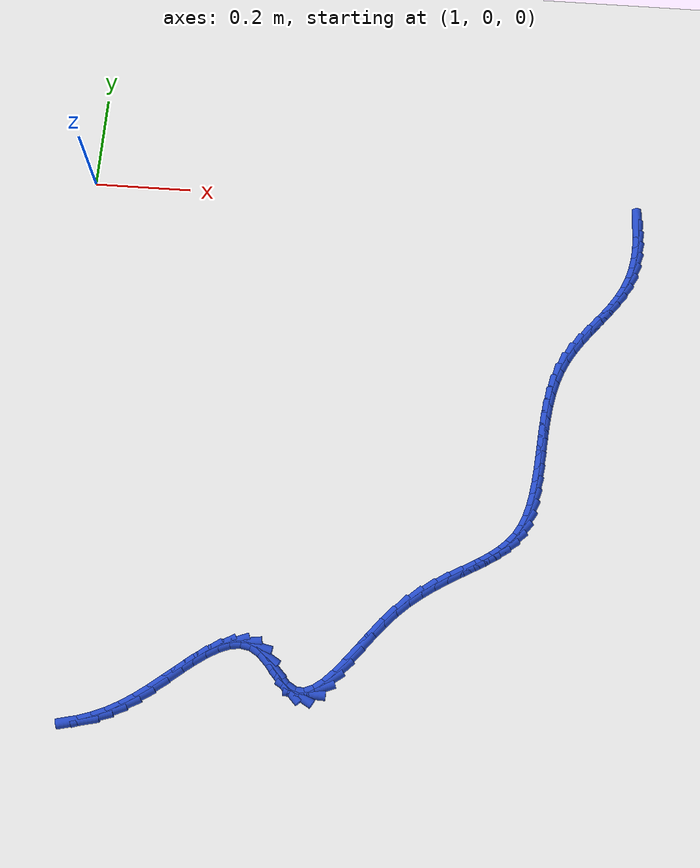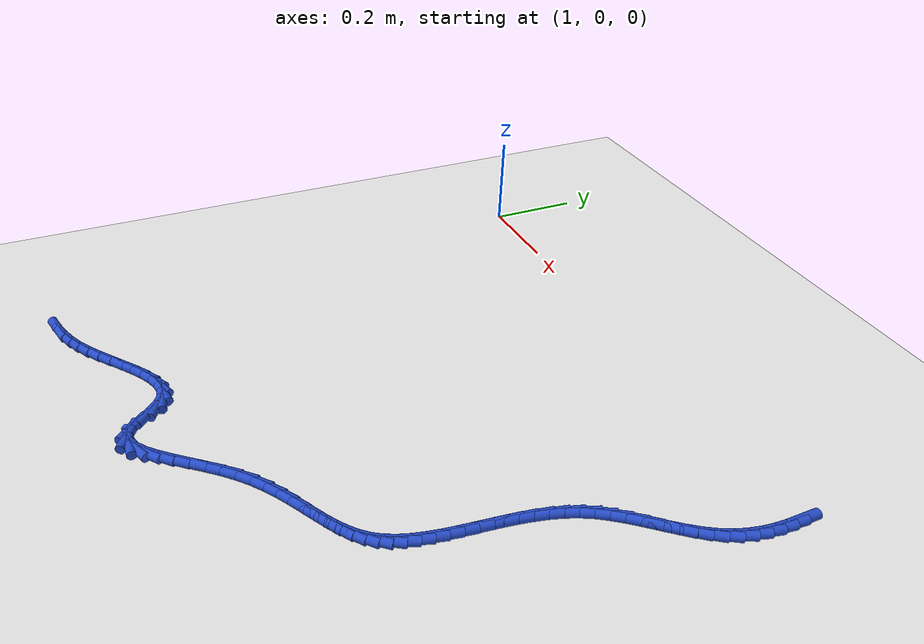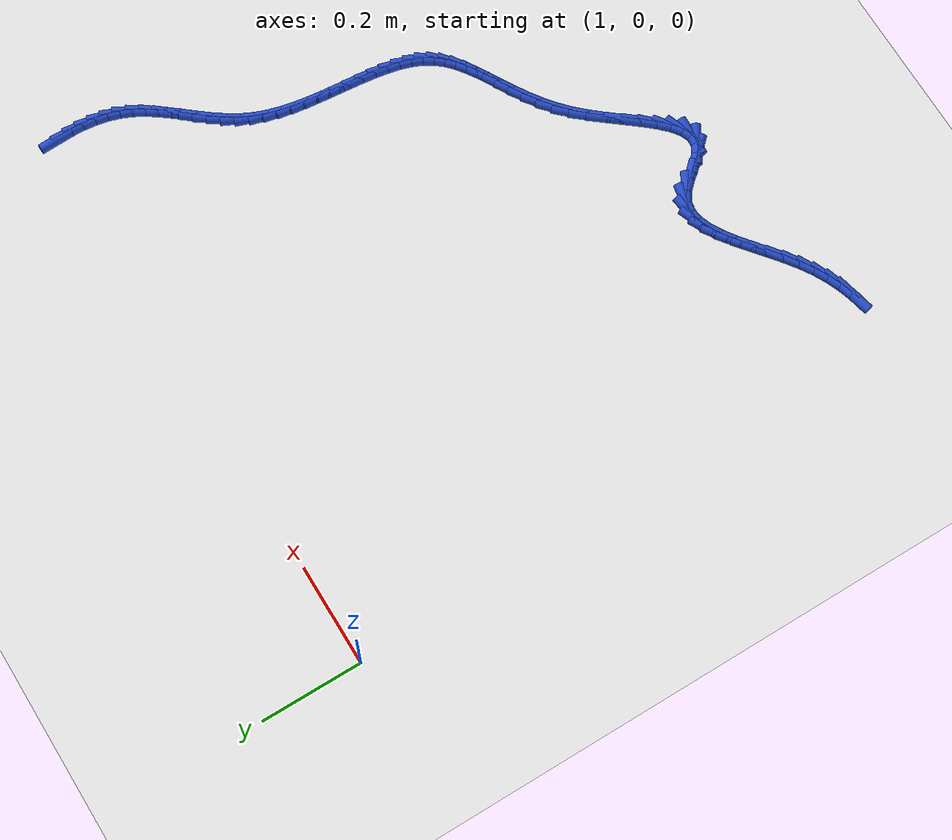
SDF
<sdf version="1.6">
 <world name="default">
  <model name="ground_plane">
   <static>1</static>
   <link name="link">
    <collision name="collision">
     <geometry><plane><normal>0 0 1</normal><size>100 100</size></plane></geometry>
     <surface><friction><ode><mu>100</mu><mu2>50</mu2></ode></friction></surface>
    </collision>
    <visual name="visual">
     <cast_shadows>0</cast_shadows>
     <geometry><plane><normal>0 0 1</normal><size>100 100</size></plane></geometry>
     <material>
      <script><uri>file://media/materials/scripts/gazebo.material</uri><name>Gazebo/WhiteGlow</name></script>
     </material>
    </visual>
   </link>
  </model>
  <model name="line">
   <link name="link_135">
    <pose>2.145547488506388 -0.024037321361176353 0.01 0 1.57 -1.529003160963976</pose>
    <collision name="collision">
     <geometry><cylinder><radius>0.01</radius><length>0.08</length></cylinder></geometry>
    </collision>
    <visual name="visual">
     <material>
      <script><name>Gazebo/Blue</name><uri>file://media/materials/scripts/gazebo.material</uri></script>
     </material>
     <geometry><cylinder><radius>0.01</radius><length>0.08</length></cylinder></geometry>
    </visual>
   </link>
   <link name="link_136">
    <pose>2.146621885973332 -0.049729843904766875 0.01 0 1.57 1.5419618150659322</pose>
    <collision name="collision">
     <geometry><cylinder><radius>0.01</radius><length>0.08</length></cylinder></geometry>
    </collision>
    <visual name="visual">
     <material>
      <script><name>Gazebo/Blue</name><uri>file://media/materials/scripts/gazebo.material</uri></script>
     </material>
     <geometry><cylinder><radius>0.01</radius><length>0.08</length></cylinder></geometry>
    </visual>
   </link>
   <link name="link_137">
    <pose>2.145894615922134 -0.074945061316441 0.01 0 1.57 1.4616460834846245</pose>
    <collision name="collision">
     <geometry><cylinder><radius>0.01</radius><length>0.08</length></cylinder></geometry>
    </collision>
    <visual name="visual">
     <material>
      <script><name>Gazebo/Blue</name><uri>file://media/materials/scripts/gazebo.material</uri></script>
     </material>
     <geometry><cylinder><radius>0.01</radius><length>0.08</length></cylinder></geometry>
    </visual>
   </link>
   <link name="link_138">
    <pose>2.1431960013786315 -0.0995706511855536 0.01 0 1.57 1.3711948818166788</pose>
    <collision name="collision">
     <geometry><cylinder><radius>0.01</radius><length>0.08</length></cylinder></geometry>
    </collision>
    <visual name="visual">
     <material>
      <script><name>Gazebo/Blue</name><uri>file://media/materials/scripts/gazebo.material</uri></script>
     </material>
     <geometry><cylinder><radius>0.01</radius><length>0.08</length></cylinder></geometry>
    </visual>
   </link>
   <link name="link_139">
    <pose>2.138356365368665 -0.12349429110145652 0.01 0 1.57 1.2707264501923532</pose>
    <collision name="collision">
     <geometry><cylinder><radius>0.01</radius><length>0.08</length></cylinder></geometry>
    </collision>
    <visual name="visual">
     <material>
      <script><name>Gazebo/Blue</name><uri>file://media/materials/scripts/gazebo.material</uri></script>
     </material>
     <geometry><cylinder><radius>0.01</radius><length>0.08</length></cylinder></geometry>
    </visual>
   </link>
   <link name="link_140">
    <pose>2.1312060309180727 -0.14660365865350378 0.01 0 1.57 1.1612245444314975</pose>
    <collision name="collision">
     <geometry><cylinder><radius>0.01</radius><length>0.08</length></cylinder></geometry>
    </collision>
    <visual name="visual">
     <material>
      <script><name>Gazebo/Blue</name><uri>file://media/materials/scripts/gazebo.material</uri></script>
     </material>
     <geometry><cylinder><radius>0.01</radius><length>0.08</length></cylinder></geometry>
    </visual>
   </link>
   <link name="link_141">
    <pose>2.1215758735260795 -0.16878671592267652 0.01 0 1.57 1.053721000031761</pose>
    <collision name="collision">
     <geometry><cylinder><radius>0.01</radius><length>0.08</length></cylinder></geometry>
    </collision>
    <visual name="visual">
     <material>
      <script><name>Gazebo/Blue</name><uri>file://media/materials/scripts/gazebo.material</uri></script>
     </material>
     <geometry><cylinder><radius>0.01</radius><length>0.08</length></cylinder></geometry>
    </visual>
   </link>
   <link name="link_142">
    <pose>2.109493567356923 -0.1900327648442142 0.01 0 1.57 0.9720666196559449</pose>
    <collision name="collision">
     <geometry><cylinder><radius>0.01</radius><length>0.08</length></cylinder></geometry>
    </collision>
    <visual name="visual">
     <material>
      <script><name>Gazebo/Blue</name><uri>file://media/materials/scripts/gazebo.material</uri></script>
     </material>
     <geometry><cylinder><radius>0.01</radius><length>0.08</length></cylinder></geometry>
    </visual>
   </link>
   <link name="link_143">
    <pose>2.0954735347144755 -0.210581754305303 0.01 0 1.57 0.9187056327368542</pose>
    <collision name="collision">
     <geometry><cylinder><radius>0.01</radius><length>0.08</length></cylinder></geometry>
    </collision>
    <visual name="visual">
     <material>
      <script><name>Gazebo/Blue</name><uri>file://media/materials/scripts/gazebo.material</uri></script>
     </material>
     <geometry><cylinder><radius>0.01</radius><length>0.08</length></cylinder></geometry>
    </visual>
   </link>
   <link name="link_144">
    <pose>2.080104141045406 -0.2307117096064709 0.01 0 1.57 0.8918225638291003</pose>
    <collision name="collision">
     <geometry><cylinder><radius>0.01</radius><length>0.08</length></cylinder></geometry>
    </collision>
    <visual name="visual">
     <material>
      <script><name>Gazebo/Blue</name><uri>file://media/materials/scripts/gazebo.material</uri></script>
     </material>
     <geometry><cylinder><radius>0.01</radius><length>0.08</length></cylinder></geometry>
    </visual>
   </link>
   <link name="link_145">
    <pose>2.0639737517963836 -0.25070065604824854 0.01 0 1.57 0.8899578127506844</pose>
    <collision name="collision">
     <geometry><cylinder><radius>0.01</radius><length>0.08</length></cylinder></geometry>
    </collision>
    <visual name="visual">
     <material>
      <script><name>Gazebo/Blue</name><uri>file://media/materials/scripts/gazebo.material</uri></script>
     </material>
     <geometry><cylinder><radius>0.01</radius><length>0.08</length></cylinder></geometry>
    </visual>
   </link>
   <link name="link_146">
    <pose>2.047670732414079 -0.270826618931164 0.01 0 1.57 0.9124601077979719</pose>
    <collision name="collision">
     <geometry><cylinder><radius>0.01</radius><length>0.08</length></cylinder></geometry>
    </collision>
    <visual name="visual">
     <material>
      <script><name>Gazebo/Blue</name><uri>file://media/materials/scripts/gazebo.material</uri></script>
     </material>
     <geometry><cylinder><radius>0.01</radius><length>0.08</length></cylinder></geometry>
    </visual>
   </link>
   <link name="link_147">
    <pose>2.03178344834516 -0.2913676235557478 0.01 0 1.57 0.9594595650948304</pose>
    <collision name="collision">
     <geometry><cylinder><radius>0.01</radius><length>0.08</length></cylinder></geometry>
    </collision>
    <visual name="visual">
     <material>
      <script><name>Gazebo/Blue</name><uri>file://media/materials/scripts/gazebo.material</uri></script>
     </material>
     <geometry><cylinder><radius>0.01</radius><length>0.08</length></cylinder></geometry>
    </visual>
   </link>
   <link name="link_148">
    <pose>2.0169002650362975 -0.3126016952225281 0.01 0 1.57 1.0314497796876039</pose>
    <collision name="collision">
     <geometry><cylinder><radius>0.01</radius><length>0.08</length></cylinder></geometry>
    </collision>
    <visual name="visual">
     <material>
      <script><name>Gazebo/Blue</name><uri>file://media/materials/scripts/gazebo.material</uri></script>
     </material>
     <geometry><cylinder><radius>0.01</radius><length>0.08</length></cylinder></geometry>
    </visual>
   </link>
   <link name="link_149">
    <pose>2.003609547934159 -0.3348068592320354 0.01 0 1.57 1.1277035733196303</pose>
    <collision name="collision">
     <geometry><cylinder><radius>0.01</radius><length>0.08</length></cylinder></geometry>
    </collision>
    <visual name="visual">
     <material>
      <script><name>Gazebo/Blue</name><uri>file://media/materials/scripts/gazebo.material</uri></script>
     </material>
     <geometry><cylinder><radius>0.01</radius><length>0.08</length></cylinder></geometry>
    </visual>
   </link>
   <link name="link_150">
    <pose>1.9924833271727724 -0.35825198910559775 0.01 0 1.57 1.2277944642108363</pose>
    <collision name="collision">
     <geometry><cylinder><radius>0.01</radius><length>0.08</length></cylinder></geometry>
    </collision>
    <visual name="visual">
     <material>
      <script><name>Gazebo/Blue</name><uri>file://media/materials/scripts/gazebo.material</uri></script>
     </material>
     <geometry><cylinder><radius>0.01</radius><length>0.08</length></cylinder></geometry>
    </visual>
   </link>
   <link name="link_151">
    <pose>1.9836588125578714 -0.3829623523973328 0.01 0 1.57 1.3104567574101407</pose>
    <collision name="collision">
     <geometry><cylinder><radius>0.01</radius><length>0.08</length></cylinder></geometry>
    </collision>
    <visual name="visual">
     <material>
      <script><name>Gazebo/Blue</name><uri>file://media/materials/scripts/gazebo.material</uri></script>
     </material>
     <geometry><cylinder><radius>0.01</radius><length>0.08</length></cylinder></geometry>
    </visual>
   </link>
   <link name="link_152">
    <pose>1.9768027763607372 -0.408699656328189 0.01 0 1.57 1.3755161002725353</pose>
    <collision name="collision">
     <geometry><cylinder><radius>0.01</radius><length>0.08</length></cylinder></geometry>
    </collision>
    <visual name="visual">
     <material>
      <script><name>Gazebo/Blue</name><uri>file://media/materials/scripts/gazebo.material</uri></script>
     </material>
     <geometry><cylinder><radius>0.01</radius><length>0.08</length></cylinder></geometry>
    </visual>
   </link>
   <link name="link_153">
    <pose>1.9715585182544 -0.4352124577104765 0.01 0 1.57 1.4243072229793712</pose>
    <collision name="collision">
     <geometry><cylinder><radius>0.01</radius><length>0.08</length></cylinder></geometry>
    </collision>
    <visual name="visual">
     <material>
      <script><name>Gazebo/Blue</name><uri>file://media/materials/scripts/gazebo.material</uri></script>
     </material>
     <geometry><cylinder><radius>0.01</radius><length>0.08</length></cylinder></geometry>
    </visual>
   </link>
   <link name="link_154">
    <pose>1.9675693379118895 -0.4622493133565088 0.01 0 1.57 1.4580988979780563</pose>
    <collision name="collision">
     <geometry><cylinder><radius>0.01</radius><length>0.08</length></cylinder></geometry>
    </collision>
    <visual name="visual">
     <material>
      <script><name>Gazebo/Blue</name><uri>file://media/materials/scripts/gazebo.material</uri></script>
     </material>
     <geometry><cylinder><radius>0.01</radius><length>0.08</length></cylinder></geometry>
    </visual>
   </link>
   <link name="link_155">
    <pose>1.9644785350062355 -0.48955878007859605 0.01 0 1.57 1.4777954753109928</pose>
    <collision name="collision">
     <geometry><cylinder><radius>0.01</radius><length>0.08</length></cylinder></geometry>
    </collision>
    <visual name="visual">
     <material>
      <script><name>Gazebo/Blue</name><uri>file://media/materials/scripts/gazebo.material</uri></script>
     </material>
     <geometry><cylinder><radius>0.01</radius><length>0.08</length></cylinder></geometry>
    </visual>
   </link>
   <link name="link_156">
    <pose>1.9619294092104673 -0.5168894146890516 0.01 0 1.57 1.483779805797403</pose>
    <collision name="collision">
     <geometry><cylinder><radius>0.01</radius><length>0.08</length></cylinder></geometry>
    </collision>
    <visual name="visual">
     <material>
      <script><name>Gazebo/Blue</name><uri>file://media/materials/scripts/gazebo.material</uri></script>
     </material>
     <geometry><cylinder><radius>0.01</radius><length>0.08</length></cylinder></geometry>
    </visual>
   </link>
   <link name="link_157">
    <pose>1.9595652601976137 -0.5439897740001852 0.01 0 1.57 1.4758161802937195</pose>
    <collision name="collision">
     <geometry><cylinder><radius>0.01</radius><length>0.08</length></cylinder></geometry>
    </collision>
    <visual name="visual">
     <material>
      <script><name>Gazebo/Blue</name><uri>file://media/materials/scripts/gazebo.material</uri></script>
     </material>
     <geometry><cylinder><radius>0.01</radius><length>0.08</length></cylinder></geometry>
    </visual>
   </link>
   <link name="link_158">
    <pose>1.9570293876407046 -0.5706084148243108 0.01 0 1.57 1.452965721846108</pose>
    <collision name="collision">
     <geometry><cylinder><radius>0.01</radius><length>0.08</length></cylinder></geometry>
    </collision>
    <visual name="visual">
     <material>
      <script><name>Gazebo/Blue</name><uri>file://media/materials/scripts/gazebo.material</uri></script>
     </material>
     <geometry><cylinder><radius>0.01</radius><length>0.08</length></cylinder></geometry>
    </visual>
   </link>
   <link name="link_159">
    <pose>1.9539650912127702 -0.5964938939737381 0.01 0 1.57 1.4135008552947723</pose>
    <collision name="collision">
     <geometry><cylinder><radius>0.01</radius><length>0.08</length></cylinder></geometry>
    </collision>
    <visual name="visual">
     <material>
      <script><name>Gazebo/Blue</name><uri>file://media/materials/scripts/gazebo.material</uri></script>
     </material>
     <geometry><cylinder><radius>0.01</radius><length>0.08</length></cylinder></geometry>
    </visual>
   </link>
   <link name="link_160">
    <pose>1.9500156705868394 -0.6213947682607802 0.01 0 1.57 1.3548513622401577</pose>
    <collision name="collision">
     <geometry><cylinder><radius>0.01</radius><length>0.08</length></cylinder></geometry>
    </collision>
    <visual name="visual">
     <material>
      <script><name>Gazebo/Blue</name><uri>file://media/materials/scripts/gazebo.material</uri></script>
     </material>
     <geometry><cylinder><radius>0.01</radius><length>0.08</length></cylinder></geometry>
    </visual>
   </link>
   <link name="link_161">
    <pose>1.944824425435942 -0.6450595944977491 0.01 0 1.57 1.2736995490524854</pose>
    <collision name="collision">
     <geometry><cylinder><radius>0.01</radius><length>0.08</length></cylinder></geometry>
    </collision>
    <visual name="visual">
     <material>
      <script><name>Gazebo/Blue</name><uri>file://media/materials/scripts/gazebo.material</uri></script>
     </material>
     <geometry><cylinder><radius>0.01</radius><length>0.08</length></cylinder></geometry>
    </visual>
   </link>
   <link name="link_162">
    <pose>1.9380346554331083 -0.6672369294969553 0.01 0 1.57 1.1664965853637423</pose>
    <collision name="collision">
     <geometry><cylinder><radius>0.01</radius><length>0.08</length></cylinder></geometry>
    </collision>
    <visual name="visual">
     <material>
      <script><name>Gazebo/Blue</name><uri>file://media/materials/scripts/gazebo.material</uri></script>
     </material>
     <geometry><cylinder><radius>0.01</radius><length>0.08</length></cylinder></geometry>
    </visual>
   </link>
   <link name="link_163">
    <pose>1.9292896602513658 -0.6876753300707117 0.01 0 1.57 1.0308545725801195</pose>
    <collision name="collision">
     <geometry><cylinder><radius>0.01</radius><length>0.08</length></cylinder></geometry>
    </collision>
    <visual name="visual">
     <material>
      <script><name>Gazebo/Blue</name><uri>file://media/materials/scripts/gazebo.material</uri></script>
     </material>
     <geometry><cylinder><radius>0.01</radius><length>0.08</length></cylinder></geometry>
    </visual>
   </link>
   <link name="link_164">
    <pose>1.9182327936556103 -0.7061234126040086 0.01 0 1.57 0.877732630157259</pose>
    <collision name="collision">
     <geometry><cylinder><radius>0.01</radius><length>0.08</length></cylinder></geometry>
    </collision>
    <visual name="visual">
     <material>
      <script><name>Gazebo/Blue</name><uri>file://media/materials/scripts/gazebo.material</uri></script>
     </material>
     <geometry><cylinder><radius>0.01</radius><length>0.08</length></cylinder></geometry>
    </visual>
   </link>
   <link name="link_165">
    <pose>1.904646332026282 -0.7224827923215713 0.01 0 1.57 0.7448929235461536</pose>
    <collision name="collision">
     <geometry><cylinder><radius>0.01</radius><length>0.08</length></cylinder></geometry>
    </collision>
    <visual name="visual">
     <material>
      <script><name>Gazebo/Blue</name><uri>file://media/materials/scripts/gazebo.material</uri></script>
     </material>
     <geometry><cylinder><radius>0.01</radius><length>0.08</length></cylinder></geometry>
    </visual>
   </link>
   <link name="link_166">
    <pose>1.8887519659687688 -0.7371390219720014 0.01 0 1.57 0.6439892334655472</pose>
    <collision name="collision">
     <geometry><cylinder><radius>0.01</radius><length>0.08</length></cylinder></geometry>
    </collision>
    <visual name="visual">
     <material>
      <script><name>Gazebo/Blue</name><uri>file://media/materials/scripts/gazebo.material</uri></script>
     </material>
     <geometry><cylinder><radius>0.01</radius><length>0.08</length></cylinder></geometry>
    </visual>
   </link>
   <link name="link_167">
    <pose>1.8708580565745776 -0.750573106608508 0.01 0 1.57 0.5750328750351091</pose>
    <collision name="collision">
     <geometry><cylinder><radius>0.01</radius><length>0.08</length></cylinder></geometry>
    </collision>
    <visual name="visual">
     <material>
      <script><name>Gazebo/Blue</name><uri>file://media/materials/scripts/gazebo.material</uri></script>
     </material>
     <geometry><cylinder><radius>0.01</radius><length>0.08</length></cylinder></geometry>
    </visual>
   </link>
   <link name="link_168">
    <pose>1.8512729649352206 -0.7632660512842987 0.01 0 1.57 0.5352155231823887</pose>
    <collision name="collision">
     <geometry><cylinder><radius>0.01</radius><length>0.08</length></cylinder></geometry>
    </collision>
    <visual name="visual">
     <material>
      <script><name>Gazebo/Blue</name><uri>file://media/materials/scripts/gazebo.material</uri></script>
     </material>
     <geometry><cylinder><radius>0.01</radius><length>0.08</length></cylinder></geometry>
    </visual>
   </link>
   <link name="link_169">
    <pose>1.830305052142206 -0.7756988610525832 0.01 0 1.57 0.5211287642328216</pose>
    <collision name="collision">
     <geometry><cylinder><radius>0.01</radius><length>0.08</length></cylinder></geometry>
    </collision>
    <visual name="visual">
     <material>
      <script><name>Gazebo/Blue</name><uri>file://media/materials/scripts/gazebo.material</uri></script>
     </material>
     <geometry><cylinder><radius>0.01</radius><length>0.08</length></cylinder></geometry>
    </visual>
   </link>
   <link name="link_170">
    <pose>1.8082626792870429 -0.7883525409665679 0.01 0 1.57 0.529728516114205</pose>
    <collision name="collision">
     <geometry><cylinder><radius>0.01</radius><length>0.08</length></cylinder></geometry>
    </collision>
    <visual name="visual">
     <material>
      <script><name>Gazebo/Blue</name><uri>file://media/materials/scripts/gazebo.material</uri></script>
     </material>
     <geometry><cylinder><radius>0.01</radius><length>0.08</length></cylinder></geometry>
    </visual>
   </link>
   <link name="link_171">
    <pose>1.785454207461242 -0.8017080960794627 0.01 0 1.57 0.558508265827945</pose>
    <collision name="collision">
     <geometry><cylinder><radius>0.01</radius><length>0.08</length></cylinder></geometry>
    </collision>
    <visual name="visual">
     <material>
      <script><name>Gazebo/Blue</name><uri>file://media/materials/scripts/gazebo.material</uri></script>
     </material>
     <geometry><cylinder><radius>0.01</radius><length>0.08</length></cylinder></geometry>
    </visual>
   </link>
   <link name="link_172">
    <pose>1.7621879977563115 -0.8162465314444761 0.01 0 1.57 0.6053000968202833</pose>
    <collision name="collision">
     <geometry><cylinder><radius>0.01</radius><length>0.08</length></cylinder></geometry>
    </collision>
    <visual name="visual">
     <material>
      <script><name>Gazebo/Blue</name><uri>file://media/materials/scripts/gazebo.material</uri></script>
     </material>
     <geometry><cylinder><radius>0.01</radius><length>0.08</length></cylinder></geometry>
    </visual>
   </link>
   <link name="link_173">
    <pose>1.7387724112637621 -0.8324488521148155 0.01 0 1.57 0.6679379629216302</pose>
    <collision name="collision">
     <geometry><cylinder><radius>0.01</radius><length>0.08</length></cylinder></geometry>
    </collision>
    <visual name="visual">
     <material>
      <script><name>Gazebo/Blue</name><uri>file://media/materials/scripts/gazebo.material</uri></script>
     </material>
     <geometry><cylinder><radius>0.01</radius><length>0.08</length></cylinder></geometry>
    </visual>
   </link>
   <link name="link_174">
    <pose>1.7155158090751024 -0.8507960631436902 0.01 0 1.57 0.743921683178703</pose>
    <collision name="collision">
     <geometry><cylinder><radius>0.01</radius><length>0.08</length></cylinder></geometry>
    </collision>
    <visual name="visual">
     <material>
      <script><name>Gazebo/Blue</name><uri>file://media/materials/scripts/gazebo.material</uri></script>
     </material>
     <geometry><cylinder><radius>0.01</radius><length>0.08</length></cylinder></geometry>
    </visual>
   </link>
   <link name="link_175">
    <pose>1.692726552281842 -0.8717691695843075 0.01 0 1.57 0.8239747014101352</pose>
    <collision name="collision">
     <geometry><cylinder><radius>0.01</radius><length>0.08</length></cylinder></geometry>
    </collision>
    <visual name="visual">
     <material>
      <script><name>Gazebo/Blue</name><uri>file://media/materials/scripts/gazebo.material</uri></script>
     </material>
     <geometry><cylinder><radius>0.01</radius><length>0.08</length></cylinder></geometry>
    </visual>
   </link>
   <link name="link_176">
    <pose>1.670665233217462 -0.8956017969624296 0.01 0 1.57 0.8779778802151064</pose>
    <collision name="collision">
     <geometry><cylinder><radius>0.01</radius><length>0.08</length></cylinder></geometry>
    </collision>
    <visual name="visual">
     <material>
      <script><name>Gazebo/Blue</name><uri>file://media/materials/scripts/gazebo.material</uri></script>
     </material>
     <geometry><cylinder><radius>0.01</radius><length>0.08</length></cylinder></geometry>
    </visual>
   </link>
   <link name="link_177">
    <pose>1.6493512733946938 -0.9212786221994915 0.01 0 1.57 0.9023176335084879</pose>
    <collision name="collision">
     <geometry><cylinder><radius>0.01</radius><length>0.08</length></cylinder></geometry>
    </collision>
    <visual name="visual">
     <material>
      <script><name>Gazebo/Blue</name><uri>file://media/materials/scripts/gazebo.material</uri></script>
     </material>
     <geometry><cylinder><radius>0.01</radius><length>0.08</length></cylinder></geometry>
    </visual>
   </link>
   <link name="link_178">
    <pose>1.6287281579353687 -0.9473910712874102 0.01 0 1.57 0.8990378030371501</pose>
    <collision name="collision">
     <geometry><cylinder><radius>0.01</radius><length>0.08</length></cylinder></geometry>
    </collision>
    <visual name="visual">
     <material>
      <script><name>Gazebo/Blue</name><uri>file://media/materials/scripts/gazebo.material</uri></script>
     </material>
     <geometry><cylinder><radius>0.01</radius><length>0.08</length></cylinder></geometry>
    </visual>
   </link>
   <link name="link_179">
    <pose>1.6087393438200936 -0.9725304244834498 0.01 0 1.57 0.8645917673765326</pose>
    <collision name="collision">
     <geometry><cylinder><radius>0.01</radius><length>0.08</length></cylinder></geometry>
    </collision>
    <visual name="visual">
     <material>
      <script><name>Gazebo/Blue</name><uri>file://media/materials/scripts/gazebo.material</uri></script>
     </material>
     <geometry><cylinder><radius>0.01</radius><length>0.08</length></cylinder></geometry>
    </visual>
   </link>
   <link name="link_180">
    <pose>1.5893282880294732 -0.9952879620448769 0.01 0 1.57 0.7874364102881622</pose>
    <collision name="collision">
     <geometry><cylinder><radius>0.01</radius><length>0.08</length></cylinder></geometry>
    </collision>
    <visual name="visual">
     <material>
      <script><name>Gazebo/Blue</name><uri>file://media/materials/scripts/gazebo.material</uri></script>
     </material>
     <geometry><cylinder><radius>0.01</radius><length>0.08</length></cylinder></geometry>
    </visual>
   </link>
   <link name="link_181">
    <pose>1.5704384475441133 -1.014254964228955 0.01 0 1.57 0.6417227682150131</pose>
    <collision name="collision">
     <geometry><cylinder><radius>0.01</radius><length>0.08</length></cylinder></geometry>
    </collision>
    <visual name="visual">
     <material>
      <script><name>Gazebo/Blue</name><uri>file://media/materials/scripts/gazebo.material</uri></script>
     </material>
     <geometry><cylinder><radius>0.01</radius><length>0.08</length></cylinder></geometry>
    </visual>
   </link>
   <link name="link_182">
    <pose>1.5520132793446195 -1.0280227112929496 0.01 0 1.57 0.3782534481332926</pose>
    <collision name="collision">
     <geometry><cylinder><radius>0.01</radius><length>0.08</length></cylinder></geometry>
    </collision>
    <visual name="visual">
     <material>
      <script><name>Gazebo/Blue</name><uri>file://media/materials/scripts/gazebo.material</uri></script>
     </material>
     <geometry><cylinder><radius>0.01</radius><length>0.08</length></cylinder></geometry>
    </visual>
   </link>
   <link name="link_183">
    <pose>1.5339962404115965 -1.0351824834941268 0.01 0 1.57 -0.04847038093511147</pose>
    <collision name="collision">
     <geometry><cylinder><radius>0.01</radius><length>0.08</length></cylinder></geometry>
    </collision>
    <visual name="visual">
     <material>
      <script><name>Gazebo/Blue</name><uri>file://media/materials/scripts/gazebo.material</uri></script>
     </material>
     <geometry><cylinder><radius>0.01</radius><length>0.08</length></cylinder></geometry>
    </visual>
   </link>
   <link name="link_184">
    <pose>1.5163307877256509 -1.0343255610897508 0.01 0 1.57 -0.5310359849798404</pose>
    <collision name="collision">
     <geometry><cylinder><radius>0.01</radius><length>0.08</length></cylinder></geometry>
    </collision>
    <visual name="visual">
     <material>
      <script><name>Gazebo/Blue</name><uri>file://media/materials/scripts/gazebo.material</uri></script>
     </material>
     <geometry><cylinder><radius>0.01</radius><length>0.08</length></cylinder></geometry>
    </visual>
   </link>
   <link name="link_185">
    <pose>1.4989565298222132 -1.0241214944430248 0.01 0 1.57 -0.8080297457779237</pose>
    <collision name="collision">
     <geometry><cylinder><radius>0.01</radius><length>0.08</length></cylinder></geometry>
    </collision>
    <visual name="visual">
     <material>
      <script><name>Gazebo/Blue</name><uri>file://media/materials/scripts/gazebo.material</uri></script>
     </material>
     <geometry><cylinder><radius>0.01</radius><length>0.08</length></cylinder></geometry>
    </visual>
   </link>
   <link name="link_186">
    <pose>1.4816753987996336 -1.0060399126059247 0.01 0 1.57 -0.8741062091459051</pose>
    <collision name="collision">
     <geometry><cylinder><radius>0.01</radius><length>0.08</length></cylinder></geometry>
    </collision>
    <visual name="visual">
     <material>
      <script><name>Gazebo/Blue</name><uri>file://media/materials/scripts/gazebo.material</uri></script>
     </material>
     <geometry><cylinder><radius>0.01</radius><length>0.08</length></cylinder></geometry>
    </visual>
   </link>
   <link name="link_187">
    <pose>1.4641170921760585 -0.9850533706772486 0.01 0 1.57 -0.7984340188741651</pose>
    <collision name="collision">
     <geometry><cylinder><radius>0.01</radius><length>0.08</length></cylinder></geometry>
    </collision>
    <visual name="visual">
     <material>
      <script><name>Gazebo/Blue</name><uri>file://media/materials/scripts/gazebo.material</uri></script>
     </material>
     <geometry><cylinder><radius>0.01</radius><length>0.08</length></cylinder></geometry>
    </visual>
   </link>
   <link name="link_188">
    <pose>1.4459004385482832 -0.966355477087041 0.01 0 1.57 -0.5455272994856106</pose>
    <collision name="collision">
     <geometry><cylinder><radius>0.01</radius><length>0.08</length></cylinder></geometry>
    </collision>
    <visual name="visual">
     <material>
      <script><name>Gazebo/Blue</name><uri>file://media/materials/scripts/gazebo.material</uri></script>
     </material>
     <geometry><cylinder><radius>0.01</radius><length>0.08</length></cylinder></geometry>
    </visual>
   </link>
   <link name="link_189">
    <pose>1.4266788037582694 -0.9546885594334528 0.01 0 1.57 -0.18429053837140177</pose>
    <collision name="collision">
     <geometry><cylinder><radius>0.01</radius><length>0.08</length></cylinder></geometry>
    </collision>
    <visual name="visual">
     <material>
      <script><name>Gazebo/Blue</name><uri>file://media/materials/scripts/gazebo.material</uri></script>
     </material>
     <geometry><cylinder><radius>0.01</radius><length>0.08</length></cylinder></geometry>
    </visual>
   </link>
   <link name="link_190">
    <pose>1.4064029492797485 -0.9509090259992035 0.01 0 1.57 0.13952052369857415</pose>
    <collision name="collision">
     <geometry><cylinder><radius>0.01</radius><length>0.08</length></cylinder></geometry>
    </collision>
    <visual name="visual">
     <material>
      <script><name>Gazebo/Blue</name><uri>file://media/materials/scripts/gazebo.material</uri></script>
     </material>
     <geometry><cylinder><radius>0.01</radius><length>0.08</length></cylinder></geometry>
    </visual>
   </link>
   <link name="link_191">
    <pose>1.3851754151513949 -0.9538900708090221 0.01 0 1.57 0.3714438079520986</pose>
    <collision name="collision">
     <geometry><cylinder><radius>0.01</radius><length>0.08</length></cylinder></geometry>
    </collision>
    <visual name="visual">
     <material>
      <script><name>Gazebo/Blue</name><uri>file://media/materials/scripts/gazebo.material</uri></script>
     </material>
     <geometry><cylinder><radius>0.01</radius><length>0.08</length></cylinder></geometry>
    </visual>
   </link>
   <link name="link_192">
    <pose>1.3630999560888746 -0.9624890163136193 0.01 0 1.57 0.5202811361433021</pose>
    <collision name="collision">
     <geometry><cylinder><radius>0.01</radius><length>0.08</length></cylinder></geometry>
    </collision>
    <visual name="visual">
     <material>
      <script><name>Gazebo/Blue</name><uri>file://media/materials/scripts/gazebo.material</uri></script>
     </material>
     <geometry><cylinder><radius>0.01</radius><length>0.08</length></cylinder></geometry>
    </visual>
   </link>
   <link name="link_193">
    <pose>1.3402803268078527 -0.975563184963706 0.01 0 1.57 0.6102876409291542</pose>
    <collision name="collision">
     <geometry><cylinder><radius>0.01</radius><length>0.08</length></cylinder></geometry>
    </collision>
    <visual name="visual">
     <material>
      <script><name>Gazebo/Blue</name><uri>file://media/materials/scripts/gazebo.material</uri></script>
     </material>
     <geometry><cylinder><radius>0.01</radius><length>0.08</length></cylinder></geometry>
    </visual>
   </link>
   <link name="link_194">
    <pose>1.3168202820239947 -0.9919698992099933 0.01 0 1.57 0.6592875599866711</pose>
    <collision name="collision">
     <geometry><cylinder><radius>0.01</radius><length>0.08</length></cylinder></geometry>
    </collision>
    <visual name="visual">
     <material>
      <script><name>Gazebo/Blue</name><uri>file://media/materials/scripts/gazebo.material</uri></script>
     </material>
     <geometry><cylinder><radius>0.01</radius><length>0.08</length></cylinder></geometry>
    </visual>
   </link>
   <link name="link_195">
    <pose>1.2928235764529667 -1.0105664815031916 0.01 0 1.57 0.6772340096588048</pose>
    <collision name="collision">
     <geometry><cylinder><radius>0.01</radius><length>0.08</length></cylinder></geometry>
    </collision>
    <visual name="visual">
     <material>
      <script><name>Gazebo/Blue</name><uri>file://media/materials/scripts/gazebo.material</uri></script>
     </material>
     <geometry><cylinder><radius>0.01</radius><length>0.08</length></cylinder></geometry>
    </visual>
   </link>
   <link name="link_196">
    <pose>1.268393964810434 -1.0302102542940124 0.01 0 1.57 0.6683365405521138</pose>
    <collision name="collision">
     <geometry><cylinder><radius>0.01</radius><length>0.08</length></cylinder></geometry>
    </collision>
    <visual name="visual">
     <material>
      <script><name>Gazebo/Blue</name><uri>file://media/materials/scripts/gazebo.material</uri></script>
     </material>
     <geometry><cylinder><radius>0.01</radius><length>0.08</length></cylinder></geometry>
    </visual>
   </link>
   <link name="link_197">
    <pose>1.2436352018120638 -1.0497585400331655 0.01 0 1.57 0.6324469487176138</pose>
    <collision name="collision">
     <geometry><cylinder><radius>0.01</radius><length>0.08</length></cylinder></geometry>
    </collision>
    <visual name="visual">
     <material>
      <script><name>Gazebo/Blue</name><uri>file://media/materials/scripts/gazebo.material</uri></script>
     </material>
     <geometry><cylinder><radius>0.01</radius><length>0.08</length></cylinder></geometry>
    </visual>
   </link>
   <link name="link_198">
    <pose>1.2186510421735195 -1.068068661171363 0.01 0 1.57 0.5665602852658698</pose>
    <collision name="collision">
     <geometry><cylinder><radius>0.01</radius><length>0.08</length></cylinder></geometry>
    </collision>
    <visual name="visual">
     <material>
      <script><name>Gazebo/Blue</name><uri>file://media/materials/scripts/gazebo.material</uri></script>
     </material>
     <geometry><cylinder><radius>0.01</radius><length>0.08</length></cylinder></geometry>
    </visual>
   </link>
   <link name="link_199">
    <pose>1.1935420761941593 -1.0840411352745192 0.01 0 1.57 0.4836489968605745</pose>
    <collision name="collision">
     <geometry><cylinder><radius>0.01</radius><length>0.08</length></cylinder></geometry>
    </collision>
    <visual name="visual">
     <material>
      <script><name>Gazebo/Blue</name><uri>file://media/materials/scripts/gazebo.material</uri></script>
     </material>
     <geometry><cylinder><radius>0.01</radius><length>0.08</length></cylinder></geometry>
    </visual>
   </link>
   <link name="link_200">
    <pose>1.1683581473228692 -1.0972691877694163 0.01 0 1.57 0.398634112612344</pose>
    <collision name="collision">
     <geometry><cylinder><radius>0.01</radius><length>0.08</length></cylinder></geometry>
    </collision>
    <visual name="visual">
     <material>
      <script><name>Gazebo/Blue</name><uri>file://media/materials/scripts/gazebo.material</uri></script>
     </material>
     <geometry><cylinder><radius>0.01</radius><length>0.08</length></cylinder></geometry>
    </visual>
   </link>
   <link name="link_201">
    <pose>1.1431082198170832 -1.107904055801833 0.01 0 1.57 0.3136471445063394</pose>
    <collision name="collision">
     <geometry><cylinder><radius>0.01</radius><length>0.08</length></cylinder></geometry>
    </collision>
    <visual name="visual">
     <material>
      <script><name>Gazebo/Blue</name><uri>file://media/materials/scripts/gazebo.material</uri></script>
     </material>
     <geometry><cylinder><radius>0.01</radius><length>0.08</length></cylinder></geometry>
    </visual>
   </link>
   <link name="link_202">
    <pose>1.1178000960199672 -1.1161128369530138 0.01 0 1.57 0.23045841112707552</pose>
    <collision name="collision">
     <geometry><cylinder><radius>0.01</radius><length>0.08</length></cylinder></geometry>
    </collision>
    <visual name="visual">
     <material>
      <script><name>Gazebo/Blue</name><uri>file://media/materials/scripts/gazebo.material</uri></script>
     </material>
     <geometry><cylinder><radius>0.01</radius><length>0.08</length></cylinder></geometry>
    </visual>
   </link>
  </model>
 </world>
</sdf>
